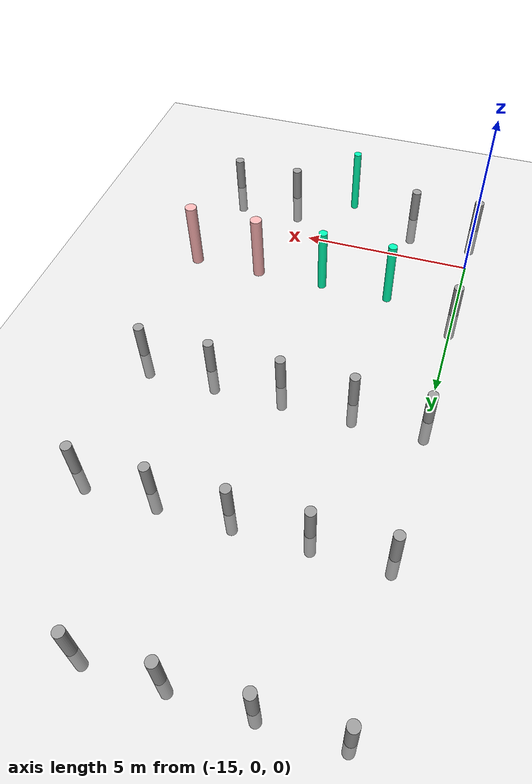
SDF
<sdf version="1.6">
 <world name="default">
  <model name="ground_plane">
   <static>1</static>
   <link name="link">
    <collision name="collision">
     <geometry><plane><normal>0 0 1</normal><size>100 100</size></plane></geometry>
     <surface><friction><ode><mu>100</mu><mu2>50</mu2></ode></friction></surface>
    </collision>
    <visual name="visual">
     <cast_shadows>0</cast_shadows>
     <geometry><plane><normal>0 0 1</normal><size>100 100</size></plane></geometry>
     <material>
      <script><uri>file://media/materials/scripts/gazebo.material</uri><name>Gazebo/Grey</name></script>
     </material>
    </visual>
   </link>
  </model>
  <model name="my_cylinder014_clone_48">
   <pose>-15 -2 0 0 -0 0</pose>
   <link name="my_cylinder014::link">
    <inertial>
     <mass>1</mass>
     <inertia><ixx>0.145833</ixx><ixy>0</ixy><ixz>0</ixz><iyy>0.145833</iyy><iyz>0</iyz><izz>0.125</izz></inertia>
    </inertial>
    <visual name="visual">
     <geometry><cylinder><radius>0.14</radius><length>2</length></cylinder></geometry>
     <material>
      <script><name>Gazebo/Grey</name><uri>file://media/materials/scripts/gazebo.material</uri></script>
      <ambient>0.3 0.3 0.3 1</ambient>
      <diffuse>0.7 0.7 0.7 1</diffuse>
      <specular>1 0.01 0.01 1</specular>
      <emissive>0 0 0 1</emissive>
      <shader type="vertex"><normal_map>__default__</normal_map></shader>
     </material>
    </visual>
    <collision name="collision">
     <geometry><cylinder><radius>0.14</radius><length>2</length></cylinder></geometry>
     <surface>
      <friction>
       <ode><mu>1</mu><mu2>1</mu2><fdir1>0 0 0</fdir1><slip1>0</slip1><slip2>0</slip2></ode>
       <torsional>
        <coefficient>1</coefficient>
        <patch_radius>0</patch_radius>
        <surface_radius>0</surface_radius>
        <use_patch_radius>1</use_patch_radius>
        <ode><slip>0</slip></ode>
       </torsional>
      </friction>
      <bounce><restitution_coefficient>0</restitution_coefficient><threshold>1e+06</threshold></bounce>
      <contact>
       <collide_without_contact>0</collide_without_contact>
       <collide_without_contact_bitmask>1</collide_without_contact_bitmask>
       <collide_bitmask>1</collide_bitmask>
       <ode>
        <soft_cfm>0</soft_cfm>
        <soft_erp>0.2</soft_erp>
        <kp>1e+13</kp>
        <kd>1</kd>
        <max_vel>0.01</max_vel>
        <min_depth>0</min_depth>
       </ode>
       <bullet>
        <split_impulse>1</split_impulse>
        <split_impulse_penetration_threshold>-0.01</split_impulse_penetration_threshold>
        <soft_cfm>0</soft_cfm>
        <soft_erp>0.2</soft_erp>
        <kp>1e+13</kp>
        <kd>1</kd>
       </bullet>
      </contact>
     </surface>
    </collision>
   </link>
   <static>1</static>
  </model>
  <model name="my_cylinder014_clone_49">
   <pose>-13 -2 0 0 -0 0</pose>
   <link name="my_cylinder014::link">
    <inertial>
     <mass>1</mass>
     <inertia><ixx>0.145833</ixx><ixy>0</ixy><ixz>0</ixz><iyy>0.145833</iyy><iyz>0</iyz><izz>0.125</izz></inertia>
    </inertial>
    <visual name="visual">
     <geometry><cylinder><radius>0.14</radius><length>2</length></cylinder></geometry>
     <material>
      <script><name>Gazebo/Grey</name><uri>file://media/materials/scripts/gazebo.material</uri></script>
      <ambient>0.3 0.3 0.3 1</ambient>
      <diffuse>0.7 0.7 0.7 1</diffuse>
      <specular>1 0.01 0.01 1</specular>
      <emissive>0 0 0 1</emissive>
      <shader type="vertex"><normal_map>__default__</normal_map></shader>
     </material>
    </visual>
    <collision name="collision">
     <geometry><cylinder><radius>0.14</radius><length>2</length></cylinder></geometry>
     <surface>
      <friction>
       <ode><mu>1</mu><mu2>1</mu2><fdir1>0 0 0</fdir1><slip1>0</slip1><slip2>0</slip2></ode>
       <torsional>
        <coefficient>1</coefficient>
        <patch_radius>0</patch_radius>
        <surface_radius>0</surface_radius>
        <use_patch_radius>1</use_patch_radius>
        <ode><slip>0</slip></ode>
       </torsional>
      </friction>
      <bounce><restitution_coefficient>0</restitution_coefficient><threshold>1e+06</threshold></bounce>
      <contact>
       <collide_without_contact>0</collide_without_contact>
       <collide_without_contact_bitmask>1</collide_without_contact_bitmask>
       <collide_bitmask>1</collide_bitmask>
       <ode>
        <soft_cfm>0</soft_cfm>
        <soft_erp>0.2</soft_erp>
        <kp>1e+13</kp>
        <kd>1</kd>
        <max_vel>0.01</max_vel>
        <min_depth>0</min_depth>
       </ode>
       <bullet>
        <split_impulse>1</split_impulse>
        <split_impulse_penetration_threshold>-0.01</split_impulse_penetration_threshold>
        <soft_cfm>0</soft_cfm>
        <soft_erp>0.2</soft_erp>
        <kp>1e+13</kp>
        <kd>1</kd>
       </bullet>
      </contact>
     </surface>
    </collision>
   </link>
   <static>1</static>
  </model>
  <model name="my_cylinder014_clone_51">
   <pose>-9 -2 0 0 -0 0</pose>
   <link name="my_cylinder014::link">
    <inertial>
     <mass>1</mass>
     <inertia><ixx>0.145833</ixx><ixy>0</ixy><ixz>0</ixz><iyy>0.145833</iyy><iyz>0</iyz><izz>0.125</izz></inertia>
    </inertial>
    <visual name="visual">
     <geometry><cylinder><radius>0.14</radius><length>2</length></cylinder></geometry>
     <material>
      <script><name>Gazebo/Grey</name><uri>file://media/materials/scripts/gazebo.material</uri></script>
      <ambient>0.3 0.3 0.3 1</ambient>
      <diffuse>0.7 0.7 0.7 1</diffuse>
      <specular>1 0.01 0.01 1</specular>
      <emissive>0 0 0 1</emissive>
      <shader type="vertex"><normal_map>__default__</normal_map></shader>
     </material>
    </visual>
    <collision name="collision">
     <geometry><cylinder><radius>0.14</radius><length>2</length></cylinder></geometry>
     <surface>
      <friction>
       <ode><mu>1</mu><mu2>1</mu2><fdir1>0 0 0</fdir1><slip1>0</slip1><slip2>0</slip2></ode>
       <torsional>
        <coefficient>1</coefficient>
        <patch_radius>0</patch_radius>
        <surface_radius>0</surface_radius>
        <use_patch_radius>1</use_patch_radius>
        <ode><slip>0</slip></ode>
       </torsional>
      </friction>
      <bounce><restitution_coefficient>0</restitution_coefficient><threshold>1e+06</threshold></bounce>
      <contact>
       <collide_without_contact>0</collide_without_contact>
       <collide_without_contact_bitmask>1</collide_without_contact_bitmask>
       <collide_bitmask>1</collide_bitmask>
       <ode>
        <soft_cfm>0</soft_cfm>
        <soft_erp>0.2</soft_erp>
        <kp>1e+13</kp>
        <kd>1</kd>
        <max_vel>0.01</max_vel>
        <min_depth>0</min_depth>
       </ode>
       <bullet>
        <split_impulse>1</split_impulse>
        <split_impulse_penetration_threshold>-0.01</split_impulse_penetration_threshold>
        <soft_cfm>0</soft_cfm>
        <soft_erp>0.2</soft_erp>
        <kp>1e+13</kp>
        <kd>1</kd>
       </bullet>
      </contact>
     </surface>
    </collision>
   </link>
   <static>1</static>
  </model>
  <model name="my_cylinder014_clone_52">
   <pose>-7 -2 0 0 -0 0</pose>
   <link name="my_cylinder014::link">
    <inertial>
     <mass>1</mass>
     <inertia><ixx>0.145833</ixx><ixy>0</ixy><ixz>0</ixz><iyy>0.145833</iyy><iyz>0</iyz><izz>0.125</izz></inertia>
    </inertial>
    <visual name="visual">
     <geometry><cylinder><radius>0.14</radius><length>2</length></cylinder></geometry>
     <material>
      <script><name>Gazebo/Grey</name><uri>file://media/materials/scripts/gazebo.material</uri></script>
      <ambient>0.3 0.3 0.3 1</ambient>
      <diffuse>0.7 0.7 0.7 1</diffuse>
      <specular>1 0.01 0.01 1</specular>
      <emissive>0 0 0 1</emissive>
      <shader type="vertex"><normal_map>__default__</normal_map></shader>
     </material>
    </visual>
    <collision name="collision">
     <geometry><cylinder><radius>0.14</radius><length>2</length></cylinder></geometry>
     <surface>
      <friction>
       <ode><mu>1</mu><mu2>1</mu2><fdir1>0 0 0</fdir1><slip1>0</slip1><slip2>0</slip2></ode>
       <torsional>
        <coefficient>1</coefficient>
        <patch_radius>0</patch_radius>
        <surface_radius>0</surface_radius>
        <use_patch_radius>1</use_patch_radius>
        <ode><slip>0</slip></ode>
       </torsional>
      </friction>
      <bounce><restitution_coefficient>0</restitution_coefficient><threshold>1e+06</threshold></bounce>
      <contact>
       <collide_without_contact>0</collide_without_contact>
       <collide_without_contact_bitmask>1</collide_without_contact_bitmask>
       <collide_bitmask>1</collide_bitmask>
       <ode>
        <soft_cfm>0</soft_cfm>
        <soft_erp>0.2</soft_erp>
        <kp>1e+13</kp>
        <kd>1</kd>
        <max_vel>0.01</max_vel>
        <min_depth>0</min_depth>
       </ode>
       <bullet>
        <split_impulse>1</split_impulse>
        <split_impulse_penetration_threshold>-0.01</split_impulse_penetration_threshold>
        <soft_cfm>0</soft_cfm>
        <soft_erp>0.2</soft_erp>
        <kp>1e+13</kp>
        <kd>1</kd>
       </bullet>
      </contact>
     </surface>
    </collision>
   </link>
   <static>1</static>
  </model>
  <model name="my_cylinder014_clone_64">
   <pose>-15 2 0 0 -0 0</pose>
   <link name="my_cylinder014::link">
    <inertial>
     <mass>1</mass>
     <inertia><ixx>0.145833</ixx><ixy>0</ixy><ixz>0</ixz><iyy>0.145833</iyy><iyz>0</iyz><izz>0.125</izz></inertia>
    </inertial>
    <visual name="visual">
     <geometry><cylinder><radius>0.14</radius><length>2</length></cylinder></geometry>
     <material>
      <script><name>Gazebo/Grey</name><uri>file://media/materials/scripts/gazebo.material</uri></script>
      <ambient>0.3 0.3 0.3 1</ambient>
      <diffuse>0.7 0.7 0.7 1</diffuse>
      <specular>1 0.01 0.01 1</specular>
      <emissive>0 0 0 1</emissive>
      <shader type="vertex"><normal_map>__default__</normal_map></shader>
     </material>
    </visual>
    <collision name="collision">
     <geometry><cylinder><radius>0.14</radius><length>2</length></cylinder></geometry>
     <surface>
      <friction>
       <ode><mu>1</mu><mu2>1</mu2><fdir1>0 0 0</fdir1><slip1>0</slip1><slip2>0</slip2></ode>
       <torsional>
        <coefficient>1</coefficient>
        <patch_radius>0</patch_radius>
        <surface_radius>0</surface_radius>
        <use_patch_radius>1</use_patch_radius>
        <ode><slip>0</slip></ode>
       </torsional>
      </friction>
      <bounce><restitution_coefficient>0</restitution_coefficient><threshold>1e+06</threshold></bounce>
      <contact>
       <collide_without_contact>0</collide_without_contact>
       <collide_without_contact_bitmask>1</collide_without_contact_bitmask>
       <collide_bitmask>1</collide_bitmask>
       <ode>
        <soft_cfm>0</soft_cfm>
        <soft_erp>0.2</soft_erp>
        <kp>1e+13</kp>
        <kd>1</kd>
        <max_vel>0.01</max_vel>
        <min_depth>0</min_depth>
       </ode>
       <bullet>
        <split_impulse>1</split_impulse>
        <split_impulse_penetration_threshold>-0.01</split_impulse_penetration_threshold>
        <soft_cfm>0</soft_cfm>
        <soft_erp>0.2</soft_erp>
        <kp>1e+13</kp>
        <kd>1</kd>
       </bullet>
      </contact>
     </surface>
    </collision>
   </link>
   <static>1</static>
  </model>
  <model name="my_cylinder014_clone_80">
   <pose>-15 6 0 0 -0 0</pose>
   <link name="my_cylinder014::link">
    <inertial>
     <mass>1</mass>
     <inertia><ixx>0.145833</ixx><ixy>0</ixy><ixz>0</ixz><iyy>0.145833</iyy><iyz>0</iyz><izz>0.125</izz></inertia>
    </inertial>
    <visual name="visual">
     <geometry><cylinder><radius>0.14</radius><length>2</length></cylinder></geometry>
     <material>
      <script><name>Gazebo/Grey</name><uri>file://media/materials/scripts/gazebo.material</uri></script>
      <ambient>0.3 0.3 0.3 1</ambient>
      <diffuse>0.7 0.7 0.7 1</diffuse>
      <specular>1 0.01 0.01 1</specular>
      <emissive>0 0 0 1</emissive>
      <shader type="vertex"><normal_map>__default__</normal_map></shader>
     </material>
    </visual>
    <collision name="collision">
     <geometry><cylinder><radius>0.14</radius><length>2</length></cylinder></geometry>
     <surface>
      <friction>
       <ode><mu>1</mu><mu2>1</mu2><fdir1>0 0 0</fdir1><slip1>0</slip1><slip2>0</slip2></ode>
       <torsional>
        <coefficient>1</coefficient>
        <patch_radius>0</patch_radius>
        <surface_radius>0</surface_radius>
        <use_patch_radius>1</use_patch_radius>
        <ode><slip>0</slip></ode>
       </torsional>
      </friction>
      <bounce><restitution_coefficient>0</restitution_coefficient><threshold>1e+06</threshold></bounce>
      <contact>
       <collide_without_contact>0</collide_without_contact>
       <collide_without_contact_bitmask>1</collide_without_contact_bitmask>
       <collide_bitmask>1</collide_bitmask>
       <ode>
        <soft_cfm>0</soft_cfm>
        <soft_erp>0.2</soft_erp>
        <kp>1e+13</kp>
        <kd>1</kd>
        <max_vel>0.01</max_vel>
        <min_depth>0</min_depth>
       </ode>
       <bullet>
        <split_impulse>1</split_impulse>
        <split_impulse_penetration_threshold>-0.01</split_impulse_penetration_threshold>
        <soft_cfm>0</soft_cfm>
        <soft_erp>0.2</soft_erp>
        <kp>1e+13</kp>
        <kd>1</kd>
       </bullet>
      </contact>
     </surface>
    </collision>
   </link>
   <static>1</static>
  </model>
  <model name="my_cylinder014_clone_81">
   <pose>-13 6 0 0 -0 0</pose>
   <link name="my_cylinder014::link">
    <inertial>
     <mass>1</mass>
     <inertia><ixx>0.145833</ixx><ixy>0</ixy><ixz>0</ixz><iyy>0.145833</iyy><iyz>0</iyz><izz>0.125</izz></inertia>
    </inertial>
    <visual name="visual">
     <geometry><cylinder><radius>0.14</radius><length>2</length></cylinder></geometry>
     <material>
      <script><name>Gazebo/Grey</name><uri>file://media/materials/scripts/gazebo.material</uri></script>
      <ambient>0.3 0.3 0.3 1</ambient>
      <diffuse>0.7 0.7 0.7 1</diffuse>
      <specular>1 0.01 0.01 1</specular>
      <emissive>0 0 0 1</emissive>
      <shader type="vertex"><normal_map>__default__</normal_map></shader>
     </material>
    </visual>
    <collision name="collision">
     <geometry><cylinder><radius>0.14</radius><length>2</length></cylinder></geometry>
     <surface>
      <friction>
       <ode><mu>1</mu><mu2>1</mu2><fdir1>0 0 0</fdir1><slip1>0</slip1><slip2>0</slip2></ode>
       <torsional>
        <coefficient>1</coefficient>
        <patch_radius>0</patch_radius>
        <surface_radius>0</surface_radius>
        <use_patch_radius>1</use_patch_radius>
        <ode><slip>0</slip></ode>
       </torsional>
      </friction>
      <bounce><restitution_coefficient>0</restitution_coefficient><threshold>1e+06</threshold></bounce>
      <contact>
       <collide_without_contact>0</collide_without_contact>
       <collide_without_contact_bitmask>1</collide_without_contact_bitmask>
       <collide_bitmask>1</collide_bitmask>
       <ode>
        <soft_cfm>0</soft_cfm>
        <soft_erp>0.2</soft_erp>
        <kp>1e+13</kp>
        <kd>1</kd>
        <max_vel>0.01</max_vel>
        <min_depth>0</min_depth>
       </ode>
       <bullet>
        <split_impulse>1</split_impulse>
        <split_impulse_penetration_threshold>-0.01</split_impulse_penetration_threshold>
        <soft_cfm>0</soft_cfm>
        <soft_erp>0.2</soft_erp>
        <kp>1e+13</kp>
        <kd>1</kd>
       </bullet>
      </contact>
     </surface>
    </collision>
   </link>
   <static>1</static>
  </model>
  <model name="my_cylinder014_clone_82">
   <pose>-11 6 0 0 -0 0</pose>
   <link name="my_cylinder014::link">
    <inertial>
     <mass>1</mass>
     <inertia><ixx>0.145833</ixx><ixy>0</ixy><ixz>0</ixz><iyy>0.145833</iyy><iyz>0</iyz><izz>0.125</izz></inertia>
    </inertial>
    <visual name="visual">
     <geometry><cylinder><radius>0.14</radius><length>2</length></cylinder></geometry>
     <material>
      <script><name>Gazebo/Grey</name><uri>file://media/materials/scripts/gazebo.material</uri></script>
      <ambient>0.3 0.3 0.3 1</ambient>
      <diffuse>0.7 0.7 0.7 1</diffuse>
      <specular>1 0.01 0.01 1</specular>
      <emissive>0 0 0 1</emissive>
      <shader type="vertex"><normal_map>__default__</normal_map></shader>
     </material>
    </visual>
    <collision name="collision">
     <geometry><cylinder><radius>0.14</radius><length>2</length></cylinder></geometry>
     <surface>
      <friction>
       <ode><mu>1</mu><mu2>1</mu2><fdir1>0 0 0</fdir1><slip1>0</slip1><slip2>0</slip2></ode>
       <torsional>
        <coefficient>1</coefficient>
        <patch_radius>0</patch_radius>
        <surface_radius>0</surface_radius>
        <use_patch_radius>1</use_patch_radius>
        <ode><slip>0</slip></ode>
       </torsional>
      </friction>
      <bounce><restitution_coefficient>0</restitution_coefficient><threshold>1e+06</threshold></bounce>
      <contact>
       <collide_without_contact>0</collide_without_contact>
       <collide_without_contact_bitmask>1</collide_without_contact_bitmask>
       <collide_bitmask>1</collide_bitmask>
       <ode>
        <soft_cfm>0</soft_cfm>
        <soft_erp>0.2</soft_erp>
        <kp>1e+13</kp>
        <kd>1</kd>
        <max_vel>0.01</max_vel>
        <min_depth>0</min_depth>
       </ode>
       <bullet>
        <split_impulse>1</split_impulse>
        <split_impulse_penetration_threshold>-0.01</split_impulse_penetration_threshold>
        <soft_cfm>0</soft_cfm>
        <soft_erp>0.2</soft_erp>
        <kp>1e+13</kp>
        <kd>1</kd>
       </bullet>
      </contact>
     </surface>
    </collision>
   </link>
   <static>1</static>
  </model>
  <model name="my_cylinder014_clone_83">
   <pose>-9 6 0 0 -0 0</pose>
   <link name="my_cylinder014::link">
    <inertial>
     <mass>1</mass>
     <inertia><ixx>0.145833</ixx><ixy>0</ixy><ixz>0</ixz><iyy>0.145833</iyy><iyz>0</iyz><izz>0.125</izz></inertia>
    </inertial>
    <visual name="visual">
     <geometry><cylinder><radius>0.14</radius><length>2</length></cylinder></geometry>
     <material>
      <script><name>Gazebo/Grey</name><uri>file://media/materials/scripts/gazebo.material</uri></script>
      <ambient>0.3 0.3 0.3 1</ambient>
      <diffuse>0.7 0.7 0.7 1</diffuse>
      <specular>1 0.01 0.01 1</specular>
      <emissive>0 0 0 1</emissive>
      <shader type="vertex"><normal_map>__default__</normal_map></shader>
     </material>
    </visual>
    <collision name="collision">
     <geometry><cylinder><radius>0.14</radius><length>2</length></cylinder></geometry>
     <surface>
      <friction>
       <ode><mu>1</mu><mu2>1</mu2><fdir1>0 0 0</fdir1><slip1>0</slip1><slip2>0</slip2></ode>
       <torsional>
        <coefficient>1</coefficient>
        <patch_radius>0</patch_radius>
        <surface_radius>0</surface_radius>
        <use_patch_radius>1</use_patch_radius>
        <ode><slip>0</slip></ode>
       </torsional>
      </friction>
      <bounce><restitution_coefficient>0</restitution_coefficient><threshold>1e+06</threshold></bounce>
      <contact>
       <collide_without_contact>0</collide_without_contact>
       <collide_without_contact_bitmask>1</collide_without_contact_bitmask>
       <collide_bitmask>1</collide_bitmask>
       <ode>
        <soft_cfm>0</soft_cfm>
        <soft_erp>0.2</soft_erp>
        <kp>1e+13</kp>
        <kd>1</kd>
        <max_vel>0.01</max_vel>
        <min_depth>0</min_depth>
       </ode>
       <bullet>
        <split_impulse>1</split_impulse>
        <split_impulse_penetration_threshold>-0.01</split_impulse_penetration_threshold>
        <soft_cfm>0</soft_cfm>
        <soft_erp>0.2</soft_erp>
        <kp>1e+13</kp>
        <kd>1</kd>
       </bullet>
      </contact>
     </surface>
    </collision>
   </link>
   <static>1</static>
  </model>
  <model name="my_cylinder014_clone_84">
   <pose>-7 6 0 0 -0 0</pose>
   <link name="my_cylinder014::link">
    <inertial>
     <mass>1</mass>
     <inertia><ixx>0.145833</ixx><ixy>0</ixy><ixz>0</ixz><iyy>0.145833</iyy><iyz>0</iyz><izz>0.125</izz></inertia>
    </inertial>
    <visual name="visual">
     <geometry><cylinder><radius>0.14</radius><length>2</length></cylinder></geometry>
     <material>
      <script><name>Gazebo/Grey</name><uri>file://media/materials/scripts/gazebo.material</uri></script>
      <ambient>0.3 0.3 0.3 1</ambient>
      <diffuse>0.7 0.7 0.7 1</diffuse>
      <specular>1 0.01 0.01 1</specular>
      <emissive>0 0 0 1</emissive>
      <shader type="vertex"><normal_map>__default__</normal_map></shader>
     </material>
    </visual>
    <collision name="collision">
     <geometry><cylinder><radius>0.14</radius><length>2</length></cylinder></geometry>
     <surface>
      <friction>
       <ode><mu>1</mu><mu2>1</mu2><fdir1>0 0 0</fdir1><slip1>0</slip1><slip2>0</slip2></ode>
       <torsional>
        <coefficient>1</coefficient>
        <patch_radius>0</patch_radius>
        <surface_radius>0</surface_radius>
        <use_patch_radius>1</use_patch_radius>
        <ode><slip>0</slip></ode>
       </torsional>
      </friction>
      <bounce><restitution_coefficient>0</restitution_coefficient><threshold>1e+06</threshold></bounce>
      <contact>
       <collide_without_contact>0</collide_without_contact>
       <collide_without_contact_bitmask>1</collide_without_contact_bitmask>
       <collide_bitmask>1</collide_bitmask>
       <ode>
        <soft_cfm>0</soft_cfm>
        <soft_erp>0.2</soft_erp>
        <kp>1e+13</kp>
        <kd>1</kd>
        <max_vel>0.01</max_vel>
        <min_depth>0</min_depth>
       </ode>
       <bullet>
        <split_impulse>1</split_impulse>
        <split_impulse_penetration_threshold>-0.01</split_impulse_penetration_threshold>
        <soft_cfm>0</soft_cfm>
        <soft_erp>0.2</soft_erp>
        <kp>1e+13</kp>
        <kd>1</kd>
       </bullet>
      </contact>
     </surface>
    </collision>
   </link>
   <static>1</static>
  </model>
  <model name="my_cylinder014_clone_96">
   <pose>-15 10 0 0 -0 0</pose>
   <link name="my_cylinder014::link">
    <inertial>
     <mass>1</mass>
     <inertia><ixx>0.145833</ixx><ixy>0</ixy><ixz>0</ixz><iyy>0.145833</iyy><iyz>0</iyz><izz>0.125</izz></inertia>
    </inertial>
    <visual name="visual">
     <geometry><cylinder><radius>0.14</radius><length>2</length></cylinder></geometry>
     <material>
      <script><name>Gazebo/Grey</name><uri>file://media/materials/scripts/gazebo.material</uri></script>
      <ambient>0.3 0.3 0.3 1</ambient>
      <diffuse>0.7 0.7 0.7 1</diffuse>
      <specular>1 0.01 0.01 1</specular>
      <emissive>0 0 0 1</emissive>
      <shader type="vertex"><normal_map>__default__</normal_map></shader>
     </material>
    </visual>
    <collision name="collision">
     <geometry><cylinder><radius>0.14</radius><length>2</length></cylinder></geometry>
     <surface>
      <friction>
       <ode><mu>1</mu><mu2>1</mu2><fdir1>0 0 0</fdir1><slip1>0</slip1><slip2>0</slip2></ode>
       <torsional>
        <coefficient>1</coefficient>
        <patch_radius>0</patch_radius>
        <surface_radius>0</surface_radius>
        <use_patch_radius>1</use_patch_radius>
        <ode><slip>0</slip></ode>
       </torsional>
      </friction>
      <bounce><restitution_coefficient>0</restitution_coefficient><threshold>1e+06</threshold></bounce>
      <contact>
       <collide_without_contact>0</collide_without_contact>
       <collide_without_contact_bitmask>1</collide_without_contact_bitmask>
       <collide_bitmask>1</collide_bitmask>
       <ode>
        <soft_cfm>0</soft_cfm>
        <soft_erp>0.2</soft_erp>
        <kp>1e+13</kp>
        <kd>1</kd>
        <max_vel>0.01</max_vel>
        <min_depth>0</min_depth>
       </ode>
       <bullet>
        <split_impulse>1</split_impulse>
        <split_impulse_penetration_threshold>-0.01</split_impulse_penetration_threshold>
        <soft_cfm>0</soft_cfm>
        <soft_erp>0.2</soft_erp>
        <kp>1e+13</kp>
        <kd>1</kd>
       </bullet>
      </contact>
     </surface>
    </collision>
   </link>
   <static>1</static>
  </model>
  <model name="my_cylinder014_clone_97">
   <pose>-13 10 0 0 -0 0</pose>
   <link name="my_cylinder014::link">
    <inertial>
     <mass>1</mass>
     <inertia><ixx>0.145833</ixx><ixy>0</ixy><ixz>0</ixz><iyy>0.145833</iyy><iyz>0</iyz><izz>0.125</izz></inertia>
    </inertial>
    <visual name="visual">
     <geometry><cylinder><radius>0.14</radius><length>2</length></cylinder></geometry>
     <material>
      <script><name>Gazebo/Grey</name><uri>file://media/materials/scripts/gazebo.material</uri></script>
      <ambient>0.3 0.3 0.3 1</ambient>
      <diffuse>0.7 0.7 0.7 1</diffuse>
      <specular>1 0.01 0.01 1</specular>
      <emissive>0 0 0 1</emissive>
      <shader type="vertex"><normal_map>__default__</normal_map></shader>
     </material>
    </visual>
    <collision name="collision">
     <geometry><cylinder><radius>0.14</radius><length>2</length></cylinder></geometry>
     <surface>
      <friction>
       <ode><mu>1</mu><mu2>1</mu2><fdir1>0 0 0</fdir1><slip1>0</slip1><slip2>0</slip2></ode>
       <torsional>
        <coefficient>1</coefficient>
        <patch_radius>0</patch_radius>
        <surface_radius>0</surface_radius>
        <use_patch_radius>1</use_patch_radius>
        <ode><slip>0</slip></ode>
       </torsional>
      </friction>
      <bounce><restitution_coefficient>0</restitution_coefficient><threshold>1e+06</threshold></bounce>
      <contact>
       <collide_without_contact>0</collide_without_contact>
       <collide_without_contact_bitmask>1</collide_without_contact_bitmask>
       <collide_bitmask>1</collide_bitmask>
       <ode>
        <soft_cfm>0</soft_cfm>
        <soft_erp>0.2</soft_erp>
        <kp>1e+13</kp>
        <kd>1</kd>
        <max_vel>0.01</max_vel>
        <min_depth>0</min_depth>
       </ode>
       <bullet>
        <split_impulse>1</split_impulse>
        <split_impulse_penetration_threshold>-0.01</split_impulse_penetration_threshold>
        <soft_cfm>0</soft_cfm>
        <soft_erp>0.2</soft_erp>
        <kp>1e+13</kp>
        <kd>1</kd>
       </bullet>
      </contact>
     </surface>
    </collision>
   </link>
   <static>1</static>
  </model>
  <model name="my_cylinder014_clone_98">
   <pose>-11 10 0 0 -0 0</pose>
   <link name="my_cylinder014::link">
    <inertial>
     <mass>1</mass>
     <inertia><ixx>0.145833</ixx><ixy>0</ixy><ixz>0</ixz><iyy>0.145833</iyy><iyz>0</iyz><izz>0.125</izz></inertia>
    </inertial>
    <visual name="visual">
     <geometry><cylinder><radius>0.14</radius><length>2</length></cylinder></geometry>
     <material>
      <script><name>Gazebo/Grey</name><uri>file://media/materials/scripts/gazebo.material</uri></script>
      <ambient>0.3 0.3 0.3 1</ambient>
      <diffuse>0.7 0.7 0.7 1</diffuse>
      <specular>1 0.01 0.01 1</specular>
      <emissive>0 0 0 1</emissive>
      <shader type="vertex"><normal_map>__default__</normal_map></shader>
     </material>
    </visual>
    <collision name="collision">
     <geometry><cylinder><radius>0.14</radius><length>2</length></cylinder></geometry>
     <surface>
      <friction>
       <ode><mu>1</mu><mu2>1</mu2><fdir1>0 0 0</fdir1><slip1>0</slip1><slip2>0</slip2></ode>
       <torsional>
        <coefficient>1</coefficient>
        <patch_radius>0</patch_radius>
        <surface_radius>0</surface_radius>
        <use_patch_radius>1</use_patch_radius>
        <ode><slip>0</slip></ode>
       </torsional>
      </friction>
      <bounce><restitution_coefficient>0</restitution_coefficient><threshold>1e+06</threshold></bounce>
      <contact>
       <collide_without_contact>0</collide_without_contact>
       <collide_without_contact_bitmask>1</collide_without_contact_bitmask>
       <collide_bitmask>1</collide_bitmask>
       <ode>
        <soft_cfm>0</soft_cfm>
        <soft_erp>0.2</soft_erp>
        <kp>1e+13</kp>
        <kd>1</kd>
        <max_vel>0.01</max_vel>
        <min_depth>0</min_depth>
       </ode>
       <bullet>
        <split_impulse>1</split_impulse>
        <split_impulse_penetration_threshold>-0.01</split_impulse_penetration_threshold>
        <soft_cfm>0</soft_cfm>
        <soft_erp>0.2</soft_erp>
        <kp>1e+13</kp>
        <kd>1</kd>
       </bullet>
      </contact>
     </surface>
    </collision>
   </link>
   <static>1</static>
  </model>
  <model name="my_cylinder014_clone_99">
   <pose>-9 10 0 0 -0 0</pose>
   <link name="my_cylinder014::link">
    <inertial>
     <mass>1</mass>
     <inertia><ixx>0.145833</ixx><ixy>0</ixy><ixz>0</ixz><iyy>0.145833</iyy><iyz>0</iyz><izz>0.125</izz></inertia>
    </inertial>
    <visual name="visual">
     <geometry><cylinder><radius>0.14</radius><length>2</length></cylinder></geometry>
     <material>
      <script><name>Gazebo/Grey</name><uri>file://media/materials/scripts/gazebo.material</uri></script>
      <ambient>0.3 0.3 0.3 1</ambient>
      <diffuse>0.7 0.7 0.7 1</diffuse>
      <specular>1 0.01 0.01 1</specular>
      <emissive>0 0 0 1</emissive>
      <shader type="vertex"><normal_map>__default__</normal_map></shader>
     </material>
    </visual>
    <collision name="collision">
     <geometry><cylinder><radius>0.14</radius><length>2</length></cylinder></geometry>
     <surface>
      <friction>
       <ode><mu>1</mu><mu2>1</mu2><fdir1>0 0 0</fdir1><slip1>0</slip1><slip2>0</slip2></ode>
       <torsional>
        <coefficient>1</coefficient>
        <patch_radius>0</patch_radius>
        <surface_radius>0</surface_radius>
        <use_patch_radius>1</use_patch_radius>
        <ode><slip>0</slip></ode>
       </torsional>
      </friction>
      <bounce><restitution_coefficient>0</restitution_coefficient><threshold>1e+06</threshold></bounce>
      <contact>
       <collide_without_contact>0</collide_without_contact>
       <collide_without_contact_bitmask>1</collide_without_contact_bitmask>
       <collide_bitmask>1</collide_bitmask>
       <ode>
        <soft_cfm>0</soft_cfm>
        <soft_erp>0.2</soft_erp>
        <kp>1e+13</kp>
        <kd>1</kd>
        <max_vel>0.01</max_vel>
        <min_depth>0</min_depth>
       </ode>
       <bullet>
        <split_impulse>1</split_impulse>
        <split_impulse_penetration_threshold>-0.01</split_impulse_penetration_threshold>
        <soft_cfm>0</soft_cfm>
        <soft_erp>0.2</soft_erp>
        <kp>1e+13</kp>
        <kd>1</kd>
       </bullet>
      </contact>
     </surface>
    </collision>
   </link>
   <static>1</static>
  </model>
  <model name="my_cylinder014_clone_100">
   <pose>-7 10 0 0 -0 0</pose>
   <link name="my_cylinder014::link">
    <inertial>
     <mass>1</mass>
     <inertia><ixx>0.145833</ixx><ixy>0</ixy><ixz>0</ixz><iyy>0.145833</iyy><iyz>0</iyz><izz>0.125</izz></inertia>
    </inertial>
    <visual name="visual">
     <geometry><cylinder><radius>0.14</radius><length>2</length></cylinder></geometry>
     <material>
      <script><name>Gazebo/Grey</name><uri>file://media/materials/scripts/gazebo.material</uri></script>
      <ambient>0.3 0.3 0.3 1</ambient>
      <diffuse>0.7 0.7 0.7 1</diffuse>
      <specular>1 0.01 0.01 1</specular>
      <emissive>0 0 0 1</emissive>
      <shader type="vertex"><normal_map>__default__</normal_map></shader>
     </material>
    </visual>
    <collision name="collision">
     <geometry><cylinder><radius>0.14</radius><length>2</length></cylinder></geometry>
     <surface>
      <friction>
       <ode><mu>1</mu><mu2>1</mu2><fdir1>0 0 0</fdir1><slip1>0</slip1><slip2>0</slip2></ode>
       <torsional>
        <coefficient>1</coefficient>
        <patch_radius>0</patch_radius>
        <surface_radius>0</surface_radius>
        <use_patch_radius>1</use_patch_radius>
        <ode><slip>0</slip></ode>
       </torsional>
      </friction>
      <bounce><restitution_coefficient>0</restitution_coefficient><threshold>1e+06</threshold></bounce>
      <contact>
       <collide_without_contact>0</collide_without_contact>
       <collide_without_contact_bitmask>1</collide_without_contact_bitmask>
       <collide_bitmask>1</collide_bitmask>
       <ode>
        <soft_cfm>0</soft_cfm>
        <soft_erp>0.2</soft_erp>
        <kp>1e+13</kp>
        <kd>1</kd>
        <max_vel>0.01</max_vel>
        <min_depth>0</min_depth>
       </ode>
       <bullet>
        <split_impulse>1</split_impulse>
        <split_impulse_penetration_threshold>-0.01</split_impulse_penetration_threshold>
        <soft_cfm>0</soft_cfm>
        <soft_erp>0.2</soft_erp>
        <kp>1e+13</kp>
        <kd>1</kd>
       </bullet>
      </contact>
     </surface>
    </collision>
   </link>
   <static>1</static>
  </model>
  <model name="my_cylinder014_clone_112">
   <pose>-15 14 0 0 -0 0</pose>
   <link name="my_cylinder014::link">
    <inertial>
     <mass>1</mass>
     <inertia><ixx>0.145833</ixx><ixy>0</ixy><ixz>0</ixz><iyy>0.145833</iyy><iyz>0</iyz><izz>0.125</izz></inertia>
    </inertial>
    <visual name="visual">
     <geometry><cylinder><radius>0.14</radius><length>2</length></cylinder></geometry>
     <material>
      <script><name>Gazebo/Grey</name><uri>file://media/materials/scripts/gazebo.material</uri></script>
      <ambient>0.3 0.3 0.3 1</ambient>
      <diffuse>0.7 0.7 0.7 1</diffuse>
      <specular>1 0.01 0.01 1</specular>
      <emissive>0 0 0 1</emissive>
      <shader type="vertex"><normal_map>__default__</normal_map></shader>
     </material>
    </visual>
    <collision name="collision">
     <geometry><cylinder><radius>0.14</radius><length>2</length></cylinder></geometry>
     <surface>
      <friction>
       <ode><mu>1</mu><mu2>1</mu2><fdir1>0 0 0</fdir1><slip1>0</slip1><slip2>0</slip2></ode>
       <torsional>
        <coefficient>1</coefficient>
        <patch_radius>0</patch_radius>
        <surface_radius>0</surface_radius>
        <use_patch_radius>1</use_patch_radius>
        <ode><slip>0</slip></ode>
       </torsional>
      </friction>
      <bounce><restitution_coefficient>0</restitution_coefficient><threshold>1e+06</threshold></bounce>
      <contact>
       <collide_without_contact>0</collide_without_contact>
       <collide_without_contact_bitmask>1</collide_without_contact_bitmask>
       <collide_bitmask>1</collide_bitmask>
       <ode>
        <soft_cfm>0</soft_cfm>
        <soft_erp>0.2</soft_erp>
        <kp>1e+13</kp>
        <kd>1</kd>
        <max_vel>0.01</max_vel>
        <min_depth>0</min_depth>
       </ode>
       <bullet>
        <split_impulse>1</split_impulse>
        <split_impulse_penetration_threshold>-0.01</split_impulse_penetration_threshold>
        <soft_cfm>0</soft_cfm>
        <soft_erp>0.2</soft_erp>
        <kp>1e+13</kp>
        <kd>1</kd>
       </bullet>
      </contact>
     </surface>
    </collision>
   </link>
   <static>1</static>
  </model>
  <model name="my_cylinder014_clone_113">
   <pose>-13 14 0 0 -0 0</pose>
   <link name="my_cylinder014::link">
    <inertial>
     <mass>1</mass>
     <inertia><ixx>0.145833</ixx><ixy>0</ixy><ixz>0</ixz><iyy>0.145833</iyy><iyz>0</iyz><izz>0.125</izz></inertia>
    </inertial>
    <visual name="visual">
     <geometry><cylinder><radius>0.14</radius><length>2</length></cylinder></geometry>
     <material>
      <script><name>Gazebo/Grey</name><uri>file://media/materials/scripts/gazebo.material</uri></script>
      <ambient>0.3 0.3 0.3 1</ambient>
      <diffuse>0.7 0.7 0.7 1</diffuse>
      <specular>1 0.01 0.01 1</specular>
      <emissive>0 0 0 1</emissive>
      <shader type="vertex"><normal_map>__default__</normal_map></shader>
     </material>
    </visual>
    <collision name="collision">
     <geometry><cylinder><radius>0.14</radius><length>2</length></cylinder></geometry>
     <surface>
      <friction>
       <ode><mu>1</mu><mu2>1</mu2><fdir1>0 0 0</fdir1><slip1>0</slip1><slip2>0</slip2></ode>
       <torsional>
        <coefficient>1</coefficient>
        <patch_radius>0</patch_radius>
        <surface_radius>0</surface_radius>
        <use_patch_radius>1</use_patch_radius>
        <ode><slip>0</slip></ode>
       </torsional>
      </friction>
      <bounce><restitution_coefficient>0</restitution_coefficient><threshold>1e+06</threshold></bounce>
      <contact>
       <collide_without_contact>0</collide_without_contact>
       <collide_without_contact_bitmask>1</collide_without_contact_bitmask>
       <collide_bitmask>1</collide_bitmask>
       <ode>
        <soft_cfm>0</soft_cfm>
        <soft_erp>0.2</soft_erp>
        <kp>1e+13</kp>
        <kd>1</kd>
        <max_vel>0.01</max_vel>
        <min_depth>0</min_depth>
       </ode>
       <bullet>
        <split_impulse>1</split_impulse>
        <split_impulse_penetration_threshold>-0.01</split_impulse_penetration_threshold>
        <soft_cfm>0</soft_cfm>
        <soft_erp>0.2</soft_erp>
        <kp>1e+13</kp>
        <kd>1</kd>
       </bullet>
      </contact>
     </surface>
    </collision>
   </link>
   <static>1</static>
  </model>
  <model name="my_cylinder014_clone_114">
   <pose>-11 14 0 0 -0 0</pose>
   <link name="my_cylinder014::link">
    <inertial>
     <mass>1</mass>
     <inertia><ixx>0.145833</ixx><ixy>0</ixy><ixz>0</ixz><iyy>0.145833</iyy><iyz>0</iyz><izz>0.125</izz></inertia>
    </inertial>
    <visual name="visual">
     <geometry><cylinder><radius>0.14</radius><length>2</length></cylinder></geometry>
     <material>
      <script><name>Gazebo/Grey</name><uri>file://media/materials/scripts/gazebo.material</uri></script>
      <ambient>0.3 0.3 0.3 1</ambient>
      <diffuse>0.7 0.7 0.7 1</diffuse>
      <specular>1 0.01 0.01 1</specular>
      <emissive>0 0 0 1</emissive>
      <shader type="vertex"><normal_map>__default__</normal_map></shader>
     </material>
    </visual>
    <collision name="collision">
     <geometry><cylinder><radius>0.14</radius><length>2</length></cylinder></geometry>
     <surface>
      <friction>
       <ode><mu>1</mu><mu2>1</mu2><fdir1>0 0 0</fdir1><slip1>0</slip1><slip2>0</slip2></ode>
       <torsional>
        <coefficient>1</coefficient>
        <patch_radius>0</patch_radius>
        <surface_radius>0</surface_radius>
        <use_patch_radius>1</use_patch_radius>
        <ode><slip>0</slip></ode>
       </torsional>
      </friction>
      <bounce><restitution_coefficient>0</restitution_coefficient><threshold>1e+06</threshold></bounce>
      <contact>
       <collide_without_contact>0</collide_without_contact>
       <collide_without_contact_bitmask>1</collide_without_contact_bitmask>
       <collide_bitmask>1</collide_bitmask>
       <ode>
        <soft_cfm>0</soft_cfm>
        <soft_erp>0.2</soft_erp>
        <kp>1e+13</kp>
        <kd>1</kd>
        <max_vel>0.01</max_vel>
        <min_depth>0</min_depth>
       </ode>
       <bullet>
        <split_impulse>1</split_impulse>
        <split_impulse_penetration_threshold>-0.01</split_impulse_penetration_threshold>
        <soft_cfm>0</soft_cfm>
        <soft_erp>0.2</soft_erp>
        <kp>1e+13</kp>
        <kd>1</kd>
       </bullet>
      </contact>
     </surface>
    </collision>
   </link>
   <static>1</static>
  </model>
  <model name="my_cylinder014_clone_115">
   <pose>-9 14 0 0 -0 0</pose>
   <link name="my_cylinder014::link">
    <inertial>
     <mass>1</mass>
     <inertia><ixx>0.145833</ixx><ixy>0</ixy><ixz>0</ixz><iyy>0.145833</iyy><iyz>0</iyz><izz>0.125</izz></inertia>
    </inertial>
    <visual name="visual">
     <geometry><cylinder><radius>0.14</radius><length>2</length></cylinder></geometry>
     <material>
      <script><name>Gazebo/Grey</name><uri>file://media/materials/scripts/gazebo.material</uri></script>
      <ambient>0.3 0.3 0.3 1</ambient>
      <diffuse>0.7 0.7 0.7 1</diffuse>
      <specular>1 0.01 0.01 1</specular>
      <emissive>0 0 0 1</emissive>
      <shader type="vertex"><normal_map>__default__</normal_map></shader>
     </material>
    </visual>
    <collision name="collision">
     <geometry><cylinder><radius>0.14</radius><length>2</length></cylinder></geometry>
     <surface>
      <friction>
       <ode><mu>1</mu><mu2>1</mu2><fdir1>0 0 0</fdir1><slip1>0</slip1><slip2>0</slip2></ode>
       <torsional>
        <coefficient>1</coefficient>
        <patch_radius>0</patch_radius>
        <surface_radius>0</surface_radius>
        <use_patch_radius>1</use_patch_radius>
        <ode><slip>0</slip></ode>
       </torsional>
      </friction>
      <bounce><restitution_coefficient>0</restitution_coefficient><threshold>1e+06</threshold></bounce>
      <contact>
       <collide_without_contact>0</collide_without_contact>
       <collide_without_contact_bitmask>1</collide_without_contact_bitmask>
       <collide_bitmask>1</collide_bitmask>
       <ode>
        <soft_cfm>0</soft_cfm>
        <soft_erp>0.2</soft_erp>
        <kp>1e+13</kp>
        <kd>1</kd>
        <max_vel>0.01</max_vel>
        <min_depth>0</min_depth>
       </ode>
       <bullet>
        <split_impulse>1</split_impulse>
        <split_impulse_penetration_threshold>-0.01</split_impulse_penetration_threshold>
        <soft_cfm>0</soft_cfm>
        <soft_erp>0.2</soft_erp>
        <kp>1e+13</kp>
        <kd>1</kd>
       </bullet>
      </contact>
     </surface>
    </collision>
   </link>
   <static>1</static>
  </model>
  <model name="my_cylinder0168_2">
   <link name="link">
    <inertial>
     <mass>1</mass>
     <inertia><ixx>0.145833</ixx><ixy>0</ixy><ixz>0</ixz><iyy>0.145833</iyy><iyz>0</iyz><izz>0.125</izz></inertia>
    </inertial>
    <visual name="visual">
     <geometry><cylinder><radius>0.168</radius><length>2</length></cylinder></geometry>
     <material>
      <script><name>Gazebo/Grey</name><uri>file://media/materials/scripts/gazebo.material</uri></script>
      <ambient>1 0.3 0.3 1</ambient>
      <diffuse>1 0.7 0.7 1</diffuse>
      <specular>1 0.01 0.01 1</specular>
      <emissive>1 0 0 1</emissive>
      <shader type="vertex"><normal_map>__default__</normal_map></shader>
     </material>
    </visual>
    <collision name="collision">
     <geometry><cylinder><radius>0.168</radius><length>2</length></cylinder></geometry>
     <surface>
      <friction>
       <ode><mu>1</mu><mu2>1</mu2><fdir1>0 0 0</fdir1><slip1>0</slip1><slip2>0</slip2></ode>
       <torsional>
        <coefficient>1</coefficient>
        <patch_radius>0</patch_radius>
        <surface_radius>0</surface_radius>
        <use_patch_radius>1</use_patch_radius>
        <ode><slip>0</slip></ode>
       </torsional>
      </friction>
      <bounce><restitution_coefficient>0</restitution_coefficient><threshold>1e+06</threshold></bounce>
      <contact>
       <collide_without_contact>0</collide_without_contact>
       <collide_without_contact_bitmask>1</collide_without_contact_bitmask>
       <collide_bitmask>1</collide_bitmask>
       <ode>
        <soft_cfm>0</soft_cfm>
        <soft_erp>0.2</soft_erp>
        <kp>1e+13</kp>
        <kd>1</kd>
        <max_vel>0.01</max_vel>
        <min_depth>0</min_depth>
       </ode>
       <bullet>
        <split_impulse>1</split_impulse>
        <split_impulse_penetration_threshold>-0.01</split_impulse_penetration_threshold>
        <soft_cfm>0</soft_cfm>
        <soft_erp>0.2</soft_erp>
        <kp>1e+13</kp>
        <kd>1</kd>
       </bullet>
      </contact>
     </surface>
    </collision>
   </link>
   <static>0</static>
   <pose>-7 2 0.999995 0 -0 0.000211</pose>
  </model>
  <model name="my_cylinder0168_3">
   <link name="link">
    <inertial>
     <mass>1</mass>
     <inertia><ixx>0.145833</ixx><ixy>0</ixy><ixz>0</ixz><iyy>0.145833</iyy><iyz>0</iyz><izz>0.125</izz></inertia>
    </inertial>
    <visual name="visual">
     <geometry><cylinder><radius>0.168</radius><length>2</length></cylinder></geometry>
     <material>
      <script><name>Gazebo/Grey</name><uri>file://media/materials/scripts/gazebo.material</uri></script>
      <ambient>1 0.3 0.3 1</ambient>
      <diffuse>1 0.7 0.7 1</diffuse>
      <specular>1 0.01 0.01 1</specular>
      <emissive>1 0 0 1</emissive>
      <shader type="vertex"><normal_map>__default__</normal_map></shader>
     </material>
    </visual>
    <collision name="collision">
     <geometry><cylinder><radius>0.168</radius><length>2</length></cylinder></geometry>
     <surface>
      <friction>
       <ode><mu>1</mu><mu2>1</mu2><fdir1>0 0 0</fdir1><slip1>0</slip1><slip2>0</slip2></ode>
       <torsional>
        <coefficient>1</coefficient>
        <patch_radius>0</patch_radius>
        <surface_radius>0</surface_radius>
        <use_patch_radius>1</use_patch_radius>
        <ode><slip>0</slip></ode>
       </torsional>
      </friction>
      <bounce><restitution_coefficient>0</restitution_coefficient><threshold>1e+06</threshold></bounce>
      <contact>
       <collide_without_contact>0</collide_without_contact>
       <collide_without_contact_bitmask>1</collide_without_contact_bitmask>
       <collide_bitmask>1</collide_bitmask>
       <ode>
        <soft_cfm>0</soft_cfm>
        <soft_erp>0.2</soft_erp>
        <kp>1e+13</kp>
        <kd>1</kd>
        <max_vel>0.01</max_vel>
        <min_depth>0</min_depth>
       </ode>
       <bullet>
        <split_impulse>1</split_impulse>
        <split_impulse_penetration_threshold>-0.01</split_impulse_penetration_threshold>
        <soft_cfm>0</soft_cfm>
        <soft_erp>0.2</soft_erp>
        <kp>1e+13</kp>
        <kd>1</kd>
       </bullet>
      </contact>
     </surface>
    </collision>
   </link>
   <static>0</static>
   <pose>-9 2 0.999995 0 -0 0.000245</pose>
  </model>
  <model name="my_cylinder0126_0">
   <link name="link">
    <inertial>
     <mass>1</mass>
     <inertia><ixx>0.145833</ixx><ixy>0</ixy><ixz>0</ixz><iyy>0.145833</iyy><iyz>0</iyz><izz>0.125</izz></inertia>
    </inertial>
    <visual name="visual">
     <geometry><cylinder><radius>0.126</radius><length>2</length></cylinder></geometry>
     <material>
      <script><name>Gazebo/Grey</name><uri>file://media/materials/scripts/gazebo.material</uri></script>
      <ambient>0.3 0.4 0.3 1</ambient>
      <diffuse>0 1 0.7 1</diffuse>
      <specular>1 0.01 0.01 1</specular>
      <emissive>0 0 0 1</emissive>
      <shader type="vertex"><normal_map>__default__</normal_map></shader>
     </material>
    </visual>
    <collision name="collision">
     <geometry><cylinder><radius>0.126</radius><length>2</length></cylinder></geometry>
     <surface>
      <friction>
       <ode><mu>1</mu><mu2>1</mu2><fdir1>0 0 0</fdir1><slip1>0</slip1><slip2>0</slip2></ode>
       <torsional>
        <coefficient>1</coefficient>
        <patch_radius>0</patch_radius>
        <surface_radius>0</surface_radius>
        <use_patch_radius>1</use_patch_radius>
        <ode><slip>0</slip></ode>
       </torsional>
      </friction>
      <bounce><restitution_coefficient>0</restitution_coefficient><threshold>1e+06</threshold></bounce>
      <contact>
       <collide_without_contact>0</collide_without_contact>
       <collide_without_contact_bitmask>1</collide_without_contact_bitmask>
       <collide_bitmask>1</collide_bitmask>
       <ode>
        <soft_cfm>0</soft_cfm>
        <soft_erp>0.2</soft_erp>
        <kp>1e+13</kp>
        <kd>1</kd>
        <max_vel>0.01</max_vel>
        <min_depth>0</min_depth>
       </ode>
       <bullet>
        <split_impulse>1</split_impulse>
        <split_impulse_penetration_threshold>-0.01</split_impulse_penetration_threshold>
        <soft_cfm>0</soft_cfm>
        <soft_erp>0.2</soft_erp>
        <kp>1e+13</kp>
        <kd>1</kd>
       </bullet>
      </contact>
     </surface>
    </collision>
   </link>
   <static>0</static>
   <pose>-11 2.00009 0.999999 0 -0 0.003816</pose>
  </model>
  <model name="my_cylinder0126_1">
   <link name="link">
    <inertial>
     <mass>1</mass>
     <inertia><ixx>0.145833</ixx><ixy>0</ixy><ixz>0</ixz><iyy>0.145833</iyy><iyz>0</iyz><izz>0.125</izz></inertia>
    </inertial>
    <visual name="visual">
     <geometry><cylinder><radius>0.126</radius><length>2</length></cylinder></geometry>
     <material>
      <script><name>Gazebo/Grey</name><uri>file://media/materials/scripts/gazebo.material</uri></script>
      <ambient>0.3 0.4 0.3 1</ambient>
      <diffuse>0 1 0.7 1</diffuse>
      <specular>1 0.01 0.01 1</specular>
      <emissive>0 0 0 1</emissive>
      <shader type="vertex"><normal_map>__default__</normal_map></shader>
     </material>
    </visual>
    <collision name="collision">
     <geometry><cylinder><radius>0.126</radius><length>2</length></cylinder></geometry>
     <surface>
      <friction>
       <ode><mu>1</mu><mu2>1</mu2><fdir1>0 0 0</fdir1><slip1>0</slip1><slip2>0</slip2></ode>
       <torsional>
        <coefficient>1</coefficient>
        <patch_radius>0</patch_radius>
        <surface_radius>0</surface_radius>
        <use_patch_radius>1</use_patch_radius>
        <ode><slip>0</slip></ode>
       </torsional>
      </friction>
      <bounce><restitution_coefficient>0</restitution_coefficient><threshold>1e+06</threshold></bounce>
      <contact>
       <collide_without_contact>0</collide_without_contact>
       <collide_without_contact_bitmask>1</collide_without_contact_bitmask>
       <collide_bitmask>1</collide_bitmask>
       <ode>
        <soft_cfm>0</soft_cfm>
        <soft_erp>0.2</soft_erp>
        <kp>1e+13</kp>
        <kd>1</kd>
        <max_vel>0.01</max_vel>
        <min_depth>0</min_depth>
       </ode>
       <bullet>
        <split_impulse>1</split_impulse>
        <split_impulse_penetration_threshold>-0.01</split_impulse_penetration_threshold>
        <soft_cfm>0</soft_cfm>
        <soft_erp>0.2</soft_erp>
        <kp>1e+13</kp>
        <kd>1</kd>
       </bullet>
      </contact>
     </surface>
    </collision>
   </link>
   <static>0</static>
   <pose>-13 2.00003 0.999995 0 0 -0.000568</pose>
  </model>
  <model name="my_cylinder0112_3">
   <link name="link">
    <inertial>
     <mass>1</mass>
     <inertia><ixx>0.145833</ixx><ixy>0</ixy><ixz>0</ixz><iyy>0.145833</iyy><iyz>0</iyz><izz>0.125</izz></inertia>
    </inertial>
    <visual name="visual">
     <geometry><cylinder><radius>0.112</radius><length>2</length></cylinder></geometry>
     <material>
      <script><name>Gazebo/Grey</name><uri>file://media/materials/scripts/gazebo.material</uri></script>
      <ambient>0 1 0.3 1</ambient>
      <diffuse>0 1 0.7 1</diffuse>
      <specular>1 1 0.01 1</specular>
      <emissive>0 0 0 1</emissive>
      <shader type="vertex"><normal_map>__default__</normal_map></shader>
     </material>
    </visual>
    <collision name="collision">
     <geometry><cylinder><radius>0.112</radius><length>2</length></cylinder></geometry>
     <surface>
      <friction>
       <ode><mu>1</mu><mu2>1</mu2><fdir1>0 0 0</fdir1><slip1>0</slip1><slip2>0</slip2></ode>
       <torsional>
        <coefficient>1</coefficient>
        <patch_radius>0</patch_radius>
        <surface_radius>0</surface_radius>
        <use_patch_radius>1</use_patch_radius>
        <ode><slip>0</slip></ode>
       </torsional>
      </friction>
      <bounce><restitution_coefficient>0</restitution_coefficient><threshold>1e+06</threshold></bounce>
      <contact>
       <collide_without_contact>0</collide_without_contact>
       <collide_without_contact_bitmask>1</collide_without_contact_bitmask>
       <collide_bitmask>1</collide_bitmask>
       <ode>
        <soft_cfm>0</soft_cfm>
        <soft_erp>0.2</soft_erp>
        <kp>1e+13</kp>
        <kd>1</kd>
        <max_vel>0.01</max_vel>
        <min_depth>0</min_depth>
       </ode>
       <bullet>
        <split_impulse>1</split_impulse>
        <split_impulse_penetration_threshold>-0.01</split_impulse_penetration_threshold>
        <soft_cfm>0</soft_cfm>
        <soft_erp>0.2</soft_erp>
        <kp>1e+13</kp>
        <kd>1</kd>
       </bullet>
      </contact>
     </surface>
    </collision>
   </link>
   <static>0</static>
   <pose>-11 -1.99993 0.999993 0 0 -0.001314</pose>
  </model>
 </world>
</sdf>
